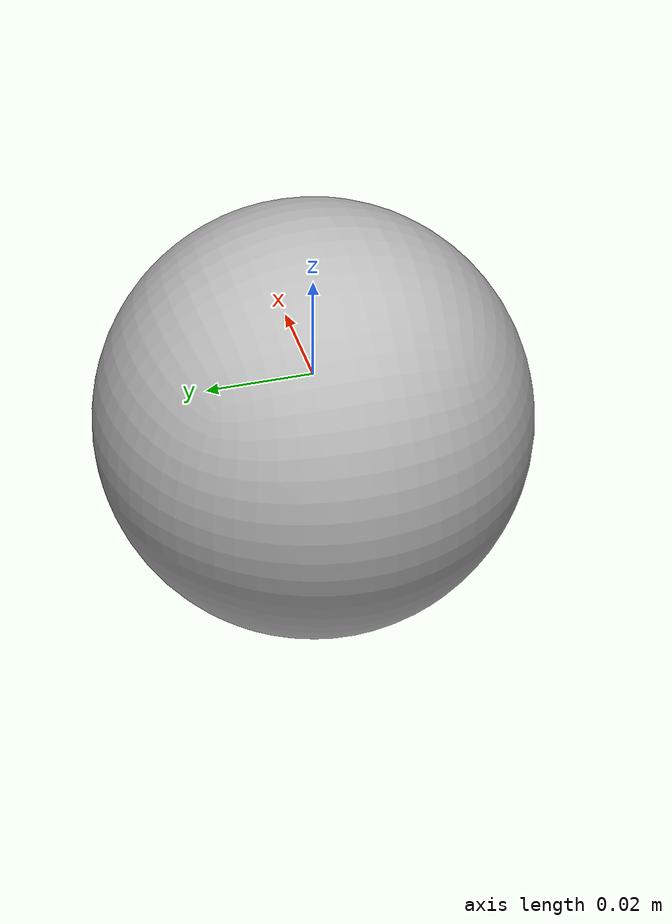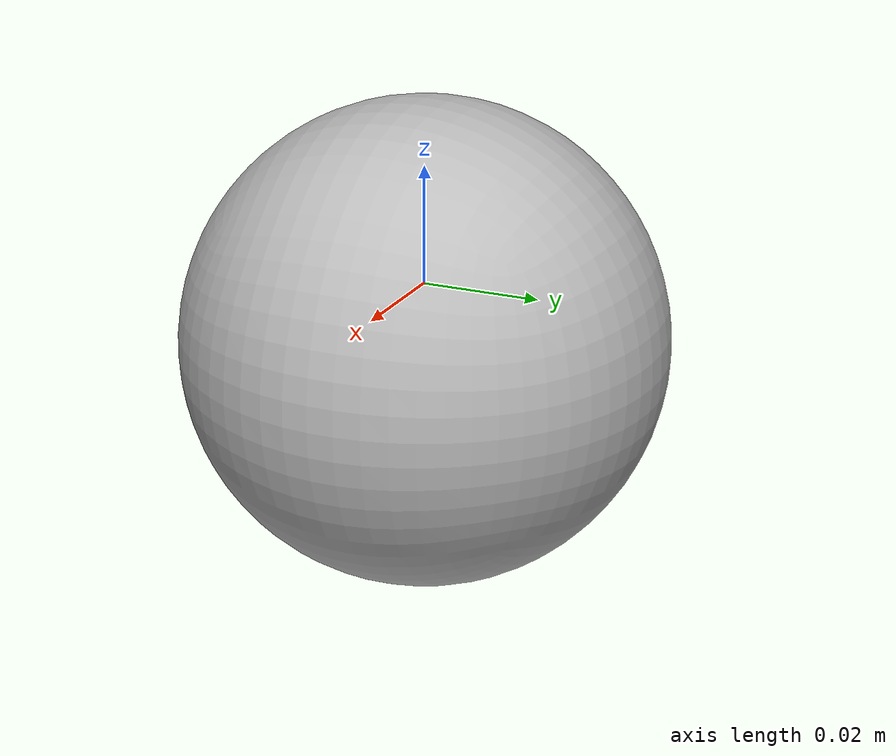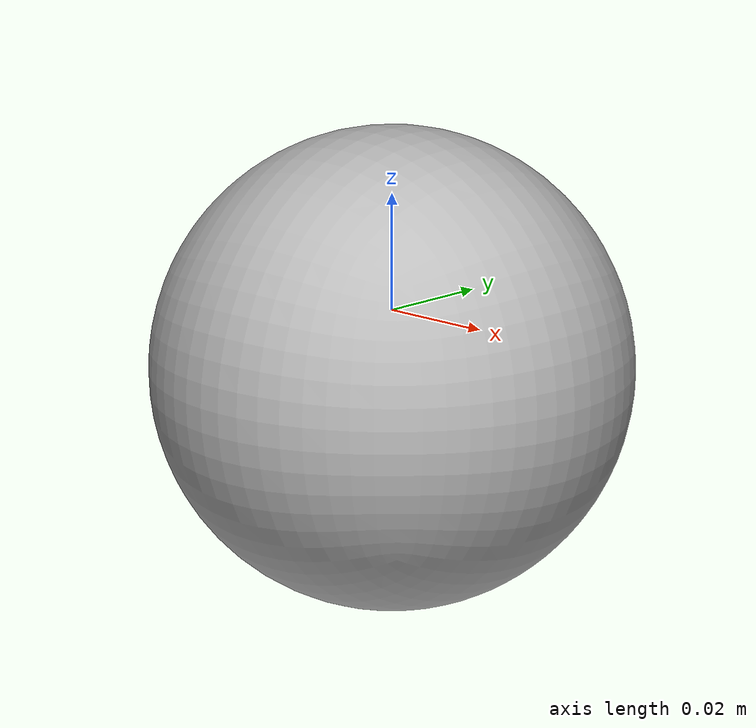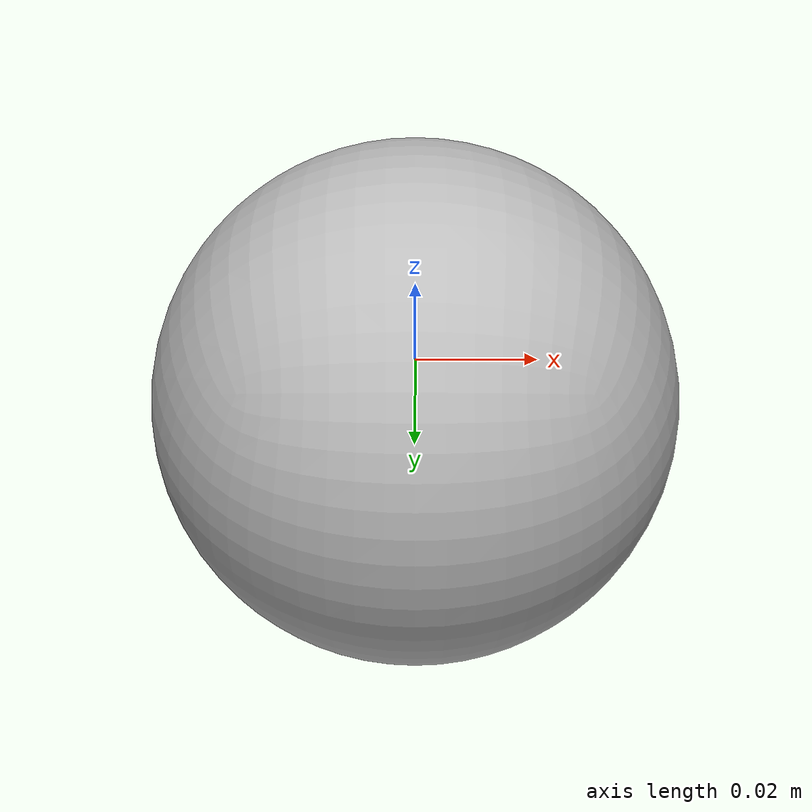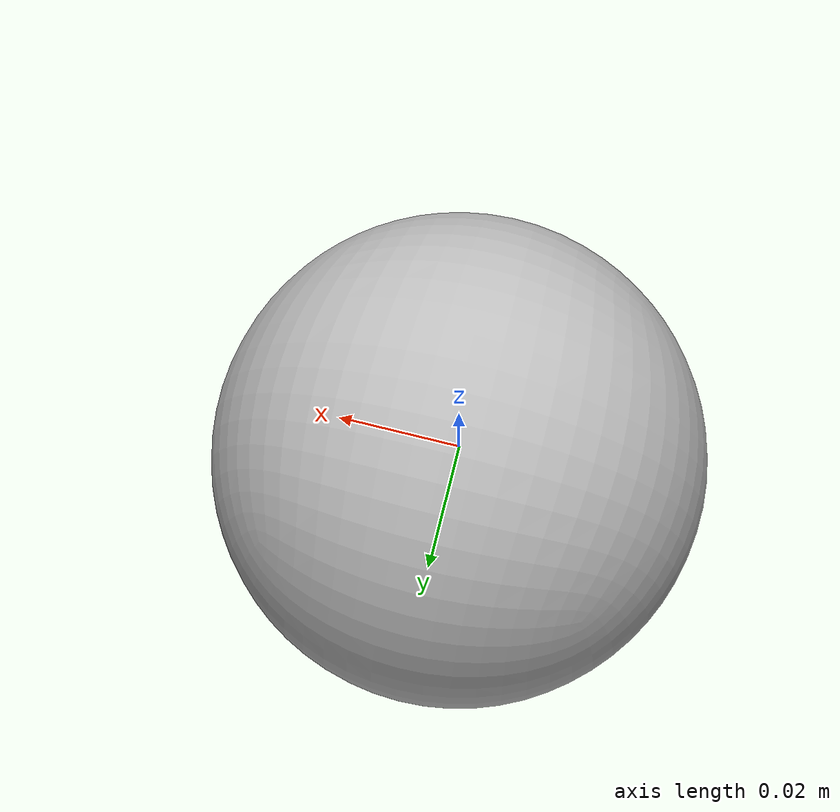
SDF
<?xml version="1.0" ?>
<sdf version="1.10">
  <model name="Sphere_plain_green">
    <static>true</static>
    <link name="link">
      <collision name="collider">
        <geometry>
          <box> <size>0.1 0.1 0.1</size> </box>
        </geometry>
      </collision>

      <pose>0 0 -0.01 1.57 0 0</pose>
      <visual name="visual">
        <geometry>
          <mesh>
            <uri>model://Sphere_plain_green/Sphere.obj</uri>
            <scale>0.05 0.05 0.05</scale>
          </mesh>
        </geometry>
      </visual>
    </link>
  </model>
</sdf>
